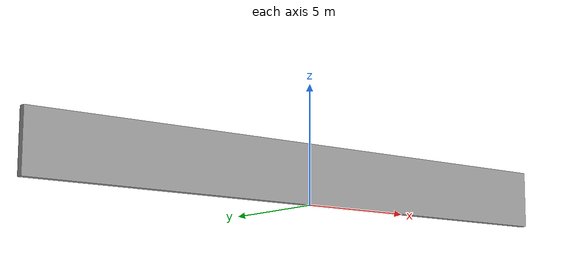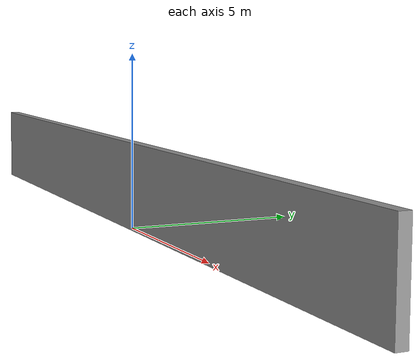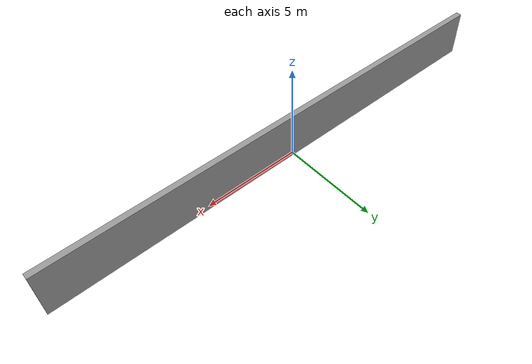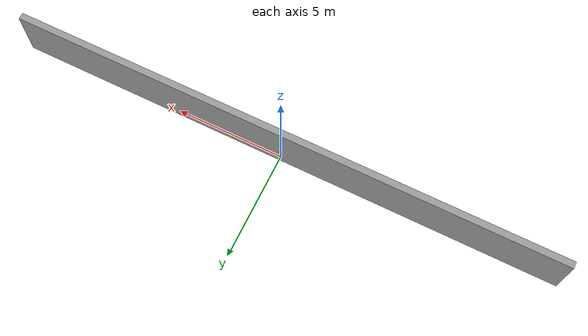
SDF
<?xml version='1.0'?>
<sdf version='1.6'>
  <model name='wall_25_03'>
    <pose frame=''>0 0 0 0 -0 0</pose>
    <link name='Wall_4'>
      <collision name='Wall_4_Collision'>
        <geometry>
          <box>
            <size>25.3 0.3 2.5</size>
          </box>
        </geometry>
        <pose frame=''>0 0 1.25 0 -0 0</pose>
      </collision>
      <visual name='Wall_4_Visual'>
        <pose frame=''>0 0 1.25 0 -0 0</pose>
        <geometry>
          <box>
            <size>25.3 0.3 2.5</size>
          </box>
        </geometry>
        <material>
          <script>
            <uri>file://media/materials/scripts/gazebo.material</uri>
            <name>Gazebo/Grey</name>
          </script>
          <ambient>1 1 1 1</ambient>
        </material>
        <meta>
          <layer>0</layer>
        </meta>
      </visual>
      <pose frame=''>0 0 0 0 -0 0</pose>
    </link>
    <static>1</static>
  </model>
</sdf>
